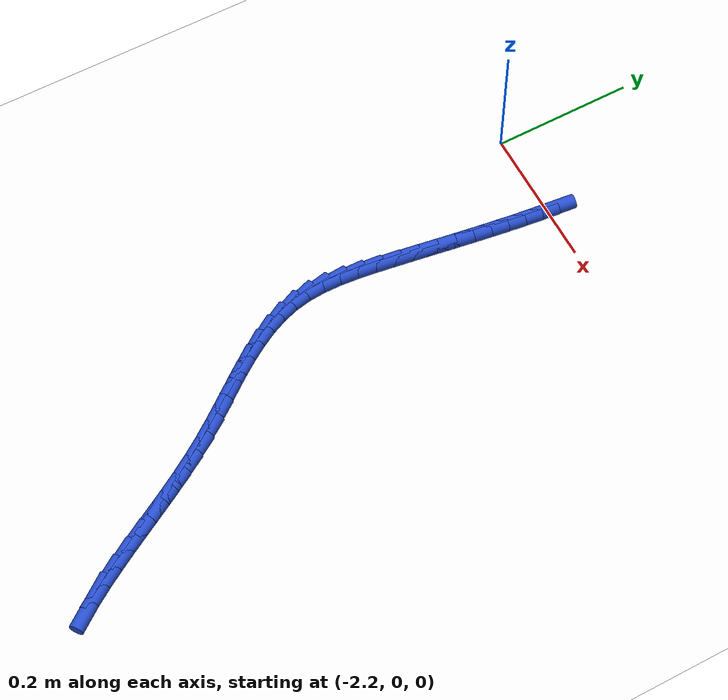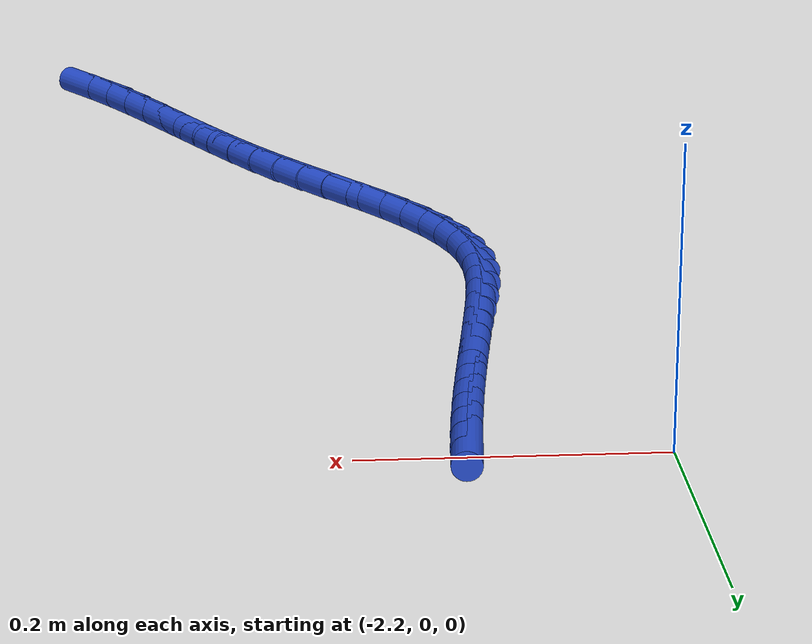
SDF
<sdf version="1.6">
 <world name="default">
  <model name="ground_plane">
   <static>1</static>
   <link name="link">
    <collision name="collision">
     <geometry><plane><normal>0 0 1</normal><size>100 100</size></plane></geometry>
     <surface><friction><ode><mu>100</mu><mu2>50</mu2></ode></friction></surface>
    </collision>
    <visual name="visual">
     <cast_shadows>0</cast_shadows>
     <geometry><plane><normal>0 0 1</normal><size>100 100</size></plane></geometry>
     <material>
      <script><uri>file://media/materials/scripts/gazebo.material</uri><name>Gazebo/WhiteGlow</name></script>
     </material>
    </visual>
   </link>
  </model>
  <model name="line">
   <link name="link_135">
    <pose>-2.070961783879057 -0.0024869297952384156 0.01 0 1.57 1.4658503901513469</pose>
    <collision name="collision">
     <geometry><cylinder><radius>0.01</radius><length>0.08</length></cylinder></geometry>
    </collision>
    <visual name="visual">
     <material>
      <script><name>Gazebo/Blue</name><uri>file://media/materials/scripts/gazebo.material</uri></script>
     </material>
     <geometry><cylinder><radius>0.01</radius><length>0.08</length></cylinder></geometry>
    </visual>
   </link>
   <link name="link_136">
    <pose>-2.0735666696976582 -0.027216955298758012 0.01 0 1.57 1.451419294014321</pose>
    <collision name="collision">
     <geometry><cylinder><radius>0.01</radius><length>0.08</length></cylinder></geometry>
    </collision>
    <visual name="visual">
     <material>
      <script><name>Gazebo/Blue</name><uri>file://media/materials/scripts/gazebo.material</uri></script>
     </material>
     <geometry><cylinder><radius>0.01</radius><length>0.08</length></cylinder></geometry>
    </visual>
   </link>
   <link name="link_137">
    <pose>-2.076522108245115 -0.05185641840749343 0.01 0 1.57 1.4394177074149848</pose>
    <collision name="collision">
     <geometry><cylinder><radius>0.01</radius><length>0.08</length></cylinder></geometry>
    </collision>
    <visual name="visual">
     <material>
      <script><name>Gazebo/Blue</name><uri>file://media/materials/scripts/gazebo.material</uri></script>
     </material>
     <geometry><cylinder><radius>0.01</radius><length>0.08</length></cylinder></geometry>
    </visual>
   </link>
   <link name="link_138">
    <pose>-2.0797729617469365 -0.07645804952201773 0.01 0 1.57 1.4299152434138167</pose>
    <collision name="collision">
     <geometry><cylinder><radius>0.01</radius><length>0.08</length></cylinder></geometry>
    </collision>
    <visual name="visual">
     <material>
      <script><name>Gazebo/Blue</name><uri>file://media/materials/scripts/gazebo.material</uri></script>
     </material>
     <geometry><cylinder><radius>0.01</radius><length>0.08</length></cylinder></geometry>
    </visual>
   </link>
   <link name="link_139">
    <pose>-2.083264092428634 -0.10107457904290112 0.01 0 1.57 1.4229506838074595</pose>
    <collision name="collision">
     <geometry><cylinder><radius>0.01</radius><length>0.08</length></cylinder></geometry>
    </collision>
    <visual name="visual">
     <material>
      <script><name>Gazebo/Blue</name><uri>file://media/materials/scripts/gazebo.material</uri></script>
     </material>
     <geometry><cylinder><radius>0.01</radius><length>0.08</length></cylinder></geometry>
    </visual>
   </link>
   <link name="link_140">
    <pose>-2.086940362515716 -0.1257587373707159 0.01 0 1.57 1.4185332868822842</pose>
    <collision name="collision">
     <geometry><cylinder><radius>0.01</radius><length>0.08</length></cylinder></geometry>
    </collision>
    <visual name="visual">
     <material>
      <script><name>Gazebo/Blue</name><uri>file://media/materials/scripts/gazebo.material</uri></script>
     </material>
     <geometry><cylinder><radius>0.01</radius><length>0.08</length></cylinder></geometry>
    </visual>
   </link>
   <link name="link_141">
    <pose>-2.090746634233693 -0.1505632549060345 0.01 0 1.57 1.4166444686818165</pose>
    <collision name="collision">
     <geometry><cylinder><radius>0.01</radius><length>0.08</length></cylinder></geometry>
    </collision>
    <visual name="visual">
     <material>
      <script><name>Gazebo/Blue</name><uri>file://media/materials/scripts/gazebo.material</uri></script>
     </material>
     <geometry><cylinder><radius>0.01</radius><length>0.08</length></cylinder></geometry>
    </visual>
   </link>
   <link name="link_142">
    <pose>-2.094627769808074 -0.17554086204942704 0.01 0 1.57 1.4172397081246464</pose>
    <collision name="collision">
     <geometry><cylinder><radius>0.01</radius><length>0.08</length></cylinder></geometry>
    </collision>
    <visual name="visual">
     <material>
      <script><name>Gazebo/Blue</name><uri>file://media/materials/scripts/gazebo.material</uri></script>
     </material>
     <geometry><cylinder><radius>0.01</radius><length>0.08</length></cylinder></geometry>
    </visual>
   </link>
   <link name="link_143">
    <pose>-2.09852863146437 -0.20074428920146656 0.01 0 1.57 1.4202505726685406</pose>
    <collision name="collision">
     <geometry><cylinder><radius>0.01</radius><length>0.08</length></cylinder></geometry>
    </collision>
    <visual name="visual">
     <material>
      <script><name>Gazebo/Blue</name><uri>file://media/materials/scripts/gazebo.material</uri></script>
     </material>
     <geometry><cylinder><radius>0.01</radius><length>0.08</length></cylinder></geometry>
    </visual>
   </link>
   <link name="link_144">
    <pose>-2.102394081428091 -0.2262262667627233 0.01 0 1.57 1.4265256987931307</pose>
    <collision name="collision">
     <geometry><cylinder><radius>0.01</radius><length>0.08</length></cylinder></geometry>
    </collision>
    <visual name="visual">
     <material>
      <script><name>Gazebo/Blue</name><uri>file://media/materials/scripts/gazebo.material</uri></script>
     </material>
     <geometry><cylinder><radius>0.01</radius><length>0.08</length></cylinder></geometry>
    </visual>
   </link>
   <link name="link_145">
    <pose>-2.1061416397074275 -0.25202168752042986 0.01 0 1.57 1.4469038548633029</pose>
    <collision name="collision">
     <geometry><cylinder><radius>0.01</radius><length>0.08</length></cylinder></geometry>
    </collision>
    <visual name="visual">
     <material>
      <script><name>Gazebo/Blue</name><uri>file://media/materials/scripts/gazebo.material</uri></script>
     </material>
     <geometry><cylinder><radius>0.01</radius><length>0.08</length></cylinder></geometry>
    </visual>
   </link>
   <link name="link_146">
    <pose>-2.109371553250175 -0.27795846053006895 0.01 0 1.57 1.4891821412789823</pose>
    <collision name="collision">
     <geometry><cylinder><radius>0.01</radius><length>0.08</length></cylinder></geometry>
    </collision>
    <visual name="visual">
     <material>
      <script><name>Gazebo/Blue</name><uri>file://media/materials/scripts/gazebo.material</uri></script>
     </material>
     <geometry><cylinder><radius>0.01</radius><length>0.08</length></cylinder></geometry>
    </visual>
   </link>
   <link name="link_147">
    <pose>-2.1114796518796743 -0.3037311364737444 0.01 0 1.57 1.5558288582986177</pose>
    <collision name="collision">
     <geometry><cylinder><radius>0.01</radius><length>0.08</length></cylinder></geometry>
    </collision>
    <visual name="visual">
     <material>
      <script><name>Gazebo/Blue</name><uri>file://media/materials/scripts/gazebo.material</uri></script>
     </material>
     <geometry><cylinder><radius>0.01</radius><length>0.08</length></cylinder></geometry>
    </visual>
   </link>
   <link name="link_148">
    <pose>-2.1118583708087124 -0.3290320514454057 0.01 0 1.57 -1.4911079095993998</pose>
    <collision name="collision">
     <geometry><cylinder><radius>0.01</radius><length>0.08</length></cylinder></geometry>
    </collision>
    <visual name="visual">
     <material>
      <script><name>Gazebo/Blue</name><uri>file://media/materials/scripts/gazebo.material</uri></script>
     </material>
     <geometry><cylinder><radius>0.01</radius><length>0.08</length></cylinder></geometry>
    </visual>
   </link>
   <link name="link_149">
    <pose>-2.1099001452500756 -0.3535535415390052 0.01 0 1.57 -1.368652208562563</pose>
    <collision name="collision">
     <geometry><cylinder><radius>0.01</radius><length>0.08</length></cylinder></geometry>
    </collision>
    <visual name="visual">
     <material>
      <script><name>Gazebo/Blue</name><uri>file://media/materials/scripts/gazebo.material</uri></script>
     </material>
     <geometry><cylinder><radius>0.01</radius><length>0.08</length></cylinder></geometry>
    </visual>
   </link>
   <link name="link_150">
    <pose>-2.1050874910261896 -0.37703640635358565 0.01 0 1.57 -1.246662086597334</pose>
    <collision name="collision">
     <geometry><cylinder><radius>0.01</radius><length>0.08</length></cylinder></geometry>
    </collision>
    <visual name="visual">
     <material>
      <script><name>Gazebo/Blue</name><uri>file://media/materials/scripts/gazebo.material</uri></script>
     </material>
     <geometry><cylinder><radius>0.01</radius><length>0.08</length></cylinder></geometry>
    </visual>
   </link>
   <link name="link_151">
    <pose>-2.0975218044202126 -0.39955440411802984 0.01 0 1.57 -1.1417622638281375</pose>
    <collision name="collision">
     <geometry><cylinder><radius>0.01</radius><length>0.08</length></cylinder></geometry>
    </collision>
    <visual name="visual">
     <material>
      <script><name>Gazebo/Blue</name><uri>file://media/materials/scripts/gazebo.material</uri></script>
     </material>
     <geometry><cylinder><radius>0.01</radius><length>0.08</length></cylinder></geometry>
    </visual>
   </link>
   <link name="link_152">
    <pose>-2.0875645307209907 -0.4213211998220893 0.01 0 1.57 -1.0568057038546148</pose>
    <collision name="collision">
     <geometry><cylinder><radius>0.01</radius><length>0.08</length></cylinder></geometry>
    </collision>
    <visual name="visual">
     <material>
      <script><name>Gazebo/Blue</name><uri>file://media/materials/scripts/gazebo.material</uri></script>
     </material>
     <geometry><cylinder><radius>0.01</radius><length>0.08</length></cylinder></geometry>
    </visual>
   </link>
   <link name="link_153">
    <pose>-2.075578013027135 -0.442550941478532 0.01 0 1.57 -0.9922729533746508</pose>
    <collision name="collision">
     <geometry><cylinder><radius>0.01</radius><length>0.08</length></cylinder></geometry>
    </collision>
    <visual name="visual">
     <material>
      <script><name>Gazebo/Blue</name><uri>file://media/materials/scripts/gazebo.material</uri></script>
     </material>
     <geometry><cylinder><radius>0.01</radius><length>0.08</length></cylinder></geometry>
    </visual>
   </link>
   <link name="link_154">
    <pose>-2.0619245944372535 -0.4634577771001281 0.01 0 1.57 -0.9473003764973383</pose>
    <collision name="collision">
     <geometry><cylinder><radius>0.01</radius><length>0.08</length></cylinder></geometry>
    </collision>
    <visual name="visual">
     <material>
      <script><name>Gazebo/Blue</name><uri>file://media/materials/scripts/gazebo.material</uri></script>
     </material>
     <geometry><cylinder><radius>0.01</radius><length>0.08</length></cylinder></geometry>
    </visual>
   </link>
   <link name="link_155">
    <pose>-2.046966618049956 -0.4842558546996454 0.01 0 1.57 -0.9205149438347121</pose>
    <collision name="collision">
     <geometry><cylinder><radius>0.01</radius><length>0.08</length></cylinder></geometry>
    </collision>
    <visual name="visual">
     <material>
      <script><name>Gazebo/Blue</name><uri>file://media/materials/scripts/gazebo.material</uri></script>
     </material>
     <geometry><cylinder><radius>0.01</radius><length>0.08</length></cylinder></geometry>
    </visual>
   </link>
   <link name="link_156">
    <pose>-2.031066426963852 -0.5051593222898544 0.01 0 1.57 -0.9105380810776917</pose>
    <collision name="collision">
     <geometry><cylinder><radius>0.01</radius><length>0.08</length></cylinder></geometry>
    </collision>
    <visual name="visual">
     <material>
      <script><name>Gazebo/Blue</name><uri>file://media/materials/scripts/gazebo.material</uri></script>
     </material>
     <geometry><cylinder><radius>0.01</radius><length>0.08</length></cylinder></geometry>
    </visual>
   </link>
   <link name="link_157">
    <pose>-2.0145863642775503 -0.5263823278835227 0.01 0 1.57 -0.9162083398619449</pose>
    <collision name="collision">
     <geometry><cylinder><radius>0.01</radius><length>0.08</length></cylinder></geometry>
    </collision>
    <visual name="visual">
     <material>
      <script><name>Gazebo/Blue</name><uri>file://media/materials/scripts/gazebo.material</uri></script>
     </material>
     <geometry><cylinder><radius>0.01</radius><length>0.08</length></cylinder></geometry>
    </visual>
   </link>
   <link name="link_158">
    <pose>-1.9978887730896604 -0.5481390194934208 0.01 0 1.57 -0.9366198605472397</pose>
    <collision name="collision">
     <geometry><cylinder><radius>0.01</radius><length>0.08</length></cylinder></geometry>
    </collision>
    <visual name="visual">
     <material>
      <script><name>Gazebo/Blue</name><uri>file://media/materials/scripts/gazebo.material</uri></script>
     </material>
     <geometry><cylinder><radius>0.01</radius><length>0.08</length></cylinder></geometry>
    </visual>
   </link>
   <link name="link_159">
    <pose>-1.9813359964987922 -0.5706435451323163 0.01 0 1.57 -0.9704801479100637</pose>
    <collision name="collision">
     <geometry><cylinder><radius>0.01</radius><length>0.08</length></cylinder></geometry>
    </collision>
    <visual name="visual">
     <material>
      <script><name>Gazebo/Blue</name><uri>file://media/materials/scripts/gazebo.material</uri></script>
     </material>
     <geometry><cylinder><radius>0.01</radius><length>0.08</length></cylinder></geometry>
    </visual>
   </link>
   <link name="link_160">
    <pose>-1.9652787414651502 -0.594098452911602 0.01 0 1.57 -1.005372477691616</pose>
    <collision name="collision">
     <geometry><cylinder><radius>0.01</radius><length>0.08</length></cylinder></geometry>
    </collision>
    <visual name="visual">
     <material>
      <script><name>Gazebo/Blue</name><uri>file://media/materials/scripts/gazebo.material</uri></script>
     </material>
     <geometry><cylinder><radius>0.01</radius><length>0.08</length></cylinder></geometry>
    </visual>
   </link>
   <link name="link_161">
    <pose>-1.9498206092272041 -0.6184599547525788 0.01 0 1.57 -1.0304261488508575</pose>
    <collision name="collision">
     <geometry><cylinder><radius>0.01</radius><length>0.08</length></cylinder></geometry>
    </collision>
    <visual name="visual">
     <material>
      <script><name>Gazebo/Blue</name><uri>file://media/materials/scripts/gazebo.material</uri></script>
     </material>
     <geometry><cylinder><radius>0.01</radius><length>0.08</length></cylinder></geometry>
    </visual>
   </link>
   <link name="link_162">
    <pose>-1.9348289874626305 -0.6434487846272462 0.01 0 1.57 -1.0458849184832133</pose>
    <collision name="collision">
     <geometry><cylinder><radius>0.01</radius><length>0.08</length></cylinder></geometry>
    </collision>
    <visual name="visual">
     <material>
      <script><name>Gazebo/Blue</name><uri>file://media/materials/scripts/gazebo.material</uri></script>
     </material>
     <geometry><cylinder><radius>0.01</radius><length>0.08</length></cylinder></geometry>
    </visual>
   </link>
   <link name="link_163">
    <pose>-1.9201618075307645 -0.6687762496379445 0.01 0 1.57 -1.0521425348065758</pose>
    <collision name="collision">
     <geometry><cylinder><radius>0.01</radius><length>0.08</length></cylinder></geometry>
    </collision>
    <visual name="visual">
     <material>
      <script><name>Gazebo/Blue</name><uri>file://media/materials/scripts/gazebo.material</uri></script>
     </material>
     <geometry><cylinder><radius>0.01</radius><length>0.08</length></cylinder></geometry>
    </visual>
   </link>
   <link name="link_164">
    <pose>-1.9056770007909456 -0.6941536568870113 0.01 0 1.57 -1.0492677901737257</pose>
    <collision name="collision">
     <geometry><cylinder><radius>0.01</radius><length>0.08</length></cylinder></geometry>
    </collision>
    <visual name="visual">
     <material>
      <script><name>Gazebo/Blue</name><uri>file://media/materials/scripts/gazebo.material</uri></script>
     </material>
     <geometry><cylinder><radius>0.01</radius><length>0.08</length></cylinder></geometry>
    </visual>
   </link>
   <link name="link_165">
    <pose>-1.8912324986025109 -0.7192923134767879 0.01 0 1.57 -1.036989457631253</pose>
    <collision name="collision">
     <geometry><cylinder><radius>0.01</radius><length>0.08</length></cylinder></geometry>
    </collision>
    <visual name="visual">
     <material>
      <script><name>Gazebo/Blue</name><uri>file://media/materials/scripts/gazebo.material</uri></script>
     </material>
     <geometry><cylinder><radius>0.01</radius><length>0.08</length></cylinder></geometry>
    </visual>
   </link>
   <link name="link_166">
    <pose>-1.8766862323247988 -0.7439035265096119 0.01 0 1.57 -1.0146735985963542</pose>
    <collision name="collision">
     <geometry><cylinder><radius>0.01</radius><length>0.08</length></cylinder></geometry>
    </collision>
    <visual name="visual">
     <material>
      <script><name>Gazebo/Blue</name><uri>file://media/materials/scripts/gazebo.material</uri></script>
     </material>
     <geometry><cylinder><radius>0.01</radius><length>0.08</length></cylinder></geometry>
    </visual>
   </link>
   <link name="link_167">
    <pose>-1.8618961333171458 -0.7676986030878237 0.01 0 1.57 -0.9812950190982785</pose>
    <collision name="collision">
     <geometry><cylinder><radius>0.01</radius><length>0.08</length></cylinder></geometry>
    </collision>
    <visual name="visual">
     <material>
      <script><name>Gazebo/Blue</name><uri>file://media/materials/scripts/gazebo.material</uri></script>
     </material>
     <geometry><cylinder><radius>0.01</radius><length>0.08</length></cylinder></geometry>
    </visual>
   </link>
   <link name="link_168">
    <pose>-1.8467201329388916 -0.7903888503137618 0.01 0 1.57 -0.9354152437978345</pose>
    <collision name="collision">
     <geometry><cylinder><radius>0.01</radius><length>0.08</length></cylinder></geometry>
    </collision>
    <visual name="visual">
     <material>
      <script><name>Gazebo/Blue</name><uri>file://media/materials/scripts/gazebo.material</uri></script>
     </material>
     <geometry><cylinder><radius>0.01</radius><length>0.08</length></cylinder></geometry>
    </visual>
   </link>
  </model>
 </world>
</sdf>
